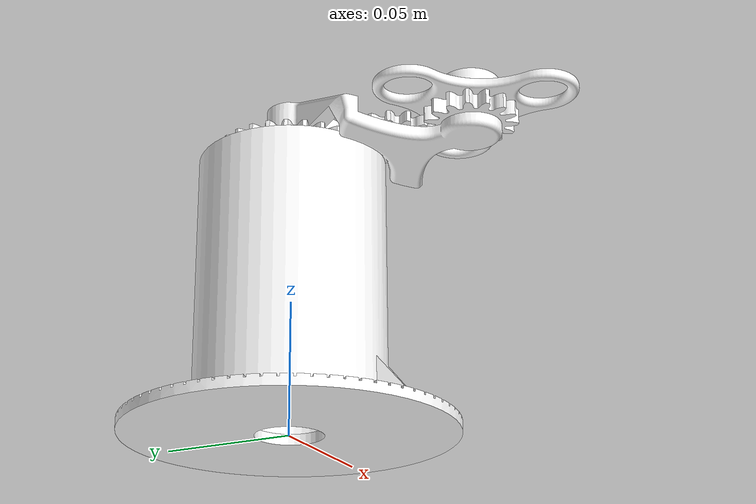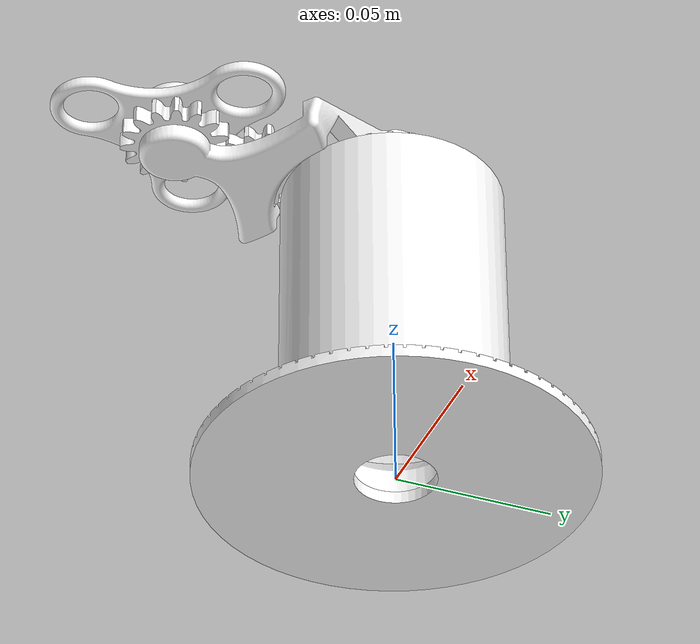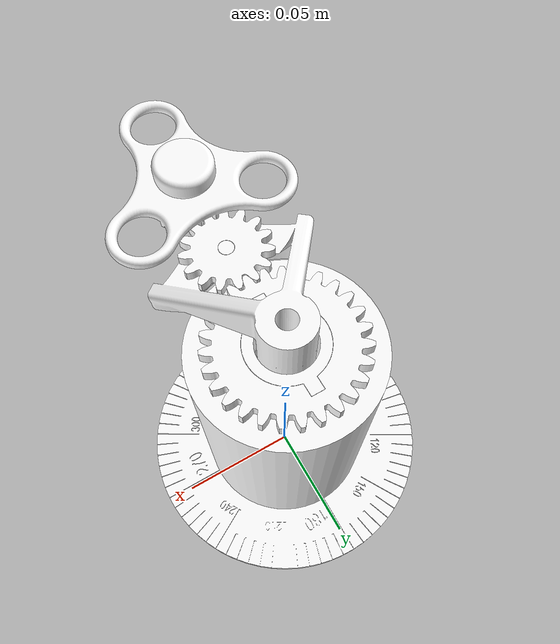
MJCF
<mujoco model="C4_Fidget">

  <asset>

    <mesh name="angle_plate" file="angle_plate.stl" scale="1 1 1"/>
    <mesh name="fidget_holder" file="fidget_holder.stl" scale="1 1 1"/>
    <mesh name="m2z27_gear" file="m2z27_gear.stl" scale="1 1 1"/>
    <mesh name="clutch_rotor" file="clutch_rotor.stl" scale="1 1 1"/>
    <mesh name="m2z15_mid_gear" file="m2z15_mid_gear.stl" scale="1 1 1"/>
    <mesh name="fidget_spinner" file="fidget_spinner.stl" scale="1 1 1"/>
    <mesh name="spinner_convex_part_0" file="spinner_decomposed_meshes/spinner_convex_part_0.obj" scale="1 1 1"/>
    <mesh name="spinner_convex_part_1" file="spinner_decomposed_meshes/spinner_convex_part_1.obj" scale="1 1 1"/>
    <mesh name="spinner_convex_part_2" file="spinner_decomposed_meshes/spinner_convex_part_2.obj" scale="1 1 1"/>
    <mesh name="spinner_convex_part_3" file="spinner_decomposed_meshes/spinner_convex_part_3.obj" scale="1 1 1"/>
    <mesh name="spinner_convex_part_4" file="spinner_decomposed_meshes/spinner_convex_part_4.obj" scale="1 1 1"/>
    <mesh name="spinner_convex_part_5" file="spinner_decomposed_meshes/spinner_convex_part_5.obj" scale="1 1 1"/>
    <mesh name="spinner_convex_part_6" file="spinner_decomposed_meshes/spinner_convex_part_6.obj" scale="1 1 1"/>
    <mesh name="spinner_convex_part_7" file="spinner_decomposed_meshes/spinner_convex_part_7.obj" scale="1 1 1"/>
    <mesh name="spinner_convex_part_8" file="spinner_decomposed_meshes/spinner_convex_part_8.obj" scale="1 1 1"/>
    <mesh name="spinner_convex_part_9" file="spinner_decomposed_meshes/spinner_convex_part_9.obj" scale="1 1 1"/>
    <mesh name="spinner_convex_part_10" file="spinner_decomposed_meshes/spinner_convex_part_10.obj" scale="1 1 1"/>
    <mesh name="spinner_convex_part_11" file="spinner_decomposed_meshes/spinner_convex_part_11.obj" scale="1 1 1"/>
    <mesh name="spinner_convex_part_12" file="spinner_decomposed_meshes/spinner_convex_part_12.obj" scale="1 1 1"/>
    <mesh name="spinner_convex_part_13" file="spinner_decomposed_meshes/spinner_convex_part_13.obj" scale="1 1 1"/>
    <mesh name="spinner_convex_part_14" file="spinner_decomposed_meshes/spinner_convex_part_14.obj" scale="1 1 1"/>
    <mesh name="spinner_convex_part_15" file="spinner_decomposed_meshes/spinner_convex_part_15.obj" scale="1 1 1"/>
    <mesh name="spinner_convex_part_16" file="spinner_decomposed_meshes/spinner_convex_part_16.obj" scale="1 1 1"/>
    <mesh name="spinner_convex_part_17" file="spinner_decomposed_meshes/spinner_convex_part_17.obj" scale="1 1 1"/>
    <mesh name="spinner_convex_part_18" file="spinner_decomposed_meshes/spinner_convex_part_18.obj" scale="1 1 1"/>
    <mesh name="spinner_convex_part_19" file="spinner_decomposed_meshes/spinner_convex_part_19.obj" scale="1 1 1"/>

    <material name="object_material" rgba="1 1 1 1" shininess="0.3"/>
  </asset>

  <default>
    <default class="visual">
      <geom contype="0" conaffinity="0" group="2"/>
    </default>
    <default class="collision">
      <geom group="3"/>
    </default>
  </default>

  <worldbody>

    <body name="fidget_rot_base" pos="0 0 0">
      <geom name="angle_plate" type="mesh" mesh="angle_plate" material="object_material" class="visual"/>
      <geom type="cylinder" size="0.06075 0.002" pos="0 0 0.002" density="248" class="collision"/>
      <geom name="fidget_holder" type="mesh" mesh="fidget_holder" material="object_material" class="visual"/>
      <geom type="cylinder" size="0.010 0.06325" pos="0 0 0.06325" density="248" class="collision"/>
      <geom type="cylinder" size="0.011 0.0025" pos="0 -0.072 0.1025" density="248" class="collision"/>
      <geom type="cylinder" size="0.011 0.003875" pos="0 -0.072 0.119375" density="248" class="collision"/>
    </body>

    <body name="clutch_rotor" pos="0 0 0.004">
      <joint name="clutch_rotor_hinge_joint" type="hinge" axis="0 0 1"/>
      <geom name="clutch_rotor" type="mesh" mesh="clutch_rotor" density="248" material="object_material" class="visual"/>
      <geom name="m2z27_gear" type="mesh" mesh="m2z27_gear" pos="0 0 0.100" density="248" material="object_material" class="visual"/>
    </body>

    <body name="mid_gear" pos="0 -0.042 0.1055">
      <joint name="mid_gear_hinge_joint" type="hinge" axis="0 0 1"/>
      <geom name="m2z15_mid_gear" type="mesh" mesh="m2z15_mid_gear" mass="0.05" material="object_material" class="visual"/>
    </body>

    <body name="fidget_spinner" pos="0 -0.072 0.1055">
      <joint name="fidget_spinner_hinge_joint" type="hinge" axis="0 0 1" damping="0.0005"/>
      <geom name="fidget_spinner" type="mesh" mesh="fidget_spinner" mass="0.05" material="object_material" class="visual"/>
      <geom type="cylinder" size="0.017 0.00275" pos="0 0 0.00275" class="collision"/>
      <geom type="mesh" mesh="spinner_convex_part_0" class="collision"/>
      <geom type="mesh" mesh="spinner_convex_part_1" class="collision"/>
      <geom type="mesh" mesh="spinner_convex_part_2" class="collision"/>
      <geom type="mesh" mesh="spinner_convex_part_3" class="collision"/>
      <geom type="mesh" mesh="spinner_convex_part_4" class="collision"/>
      <geom type="mesh" mesh="spinner_convex_part_5" class="collision"/>
      <geom type="mesh" mesh="spinner_convex_part_6" class="collision"/>
      <geom type="mesh" mesh="spinner_convex_part_7" class="collision"/>
      <geom type="mesh" mesh="spinner_convex_part_8" class="collision"/>
      <geom type="mesh" mesh="spinner_convex_part_9" class="collision"/>
      <geom type="mesh" mesh="spinner_convex_part_10" class="collision"/>
      <geom type="mesh" mesh="spinner_convex_part_11" class="collision"/>
      <geom type="mesh" mesh="spinner_convex_part_12" class="collision"/>
      <geom type="mesh" mesh="spinner_convex_part_13" class="collision"/>
      <geom type="mesh" mesh="spinner_convex_part_14" class="collision"/>
      <geom type="mesh" mesh="spinner_convex_part_15" class="collision"/>
      <geom type="mesh" mesh="spinner_convex_part_16" class="collision"/>
      <geom type="mesh" mesh="spinner_convex_part_17" class="collision"/>
      <geom type="mesh" mesh="spinner_convex_part_18" class="collision"/>
      <geom type="mesh" mesh="spinner_convex_part_19" class="collision"/>
    </body>

  </worldbody>

  <equality>
    <!-- constraint: joint1 = -2 * joint2 -->
    <joint name="gear_coupling1" joint1="fidget_spinner_hinge_joint" joint2="mid_gear_hinge_joint" polycoef="0 -1 0"/>
    <joint name="gear_coupling2" joint1="mid_gear_hinge_joint" joint2="clutch_rotor_hinge_joint" polycoef="0 -1.8 0"/>
  </equality>

</mujoco>
